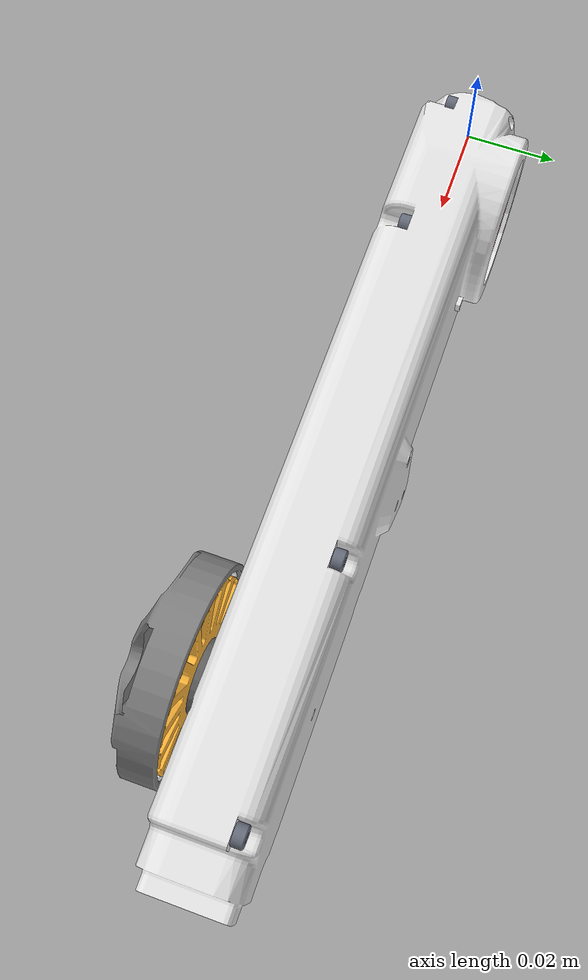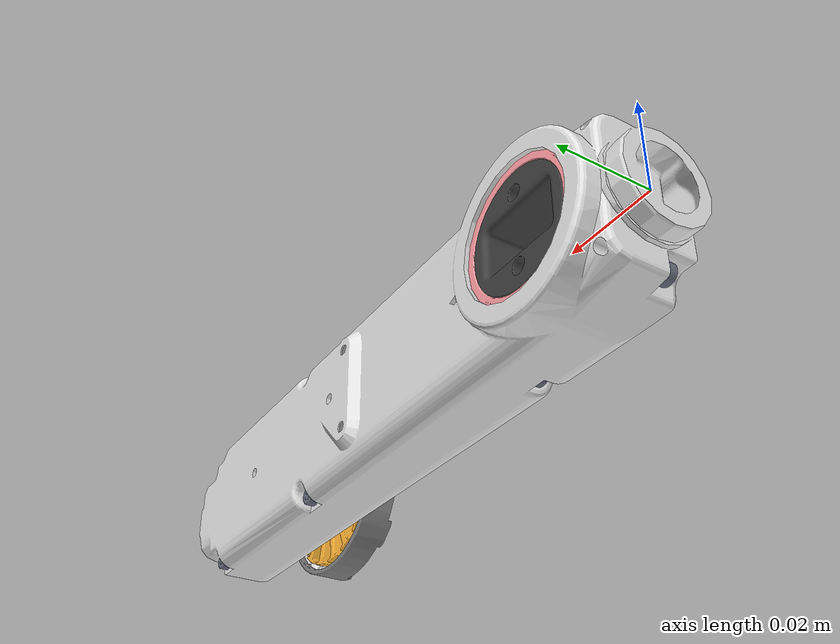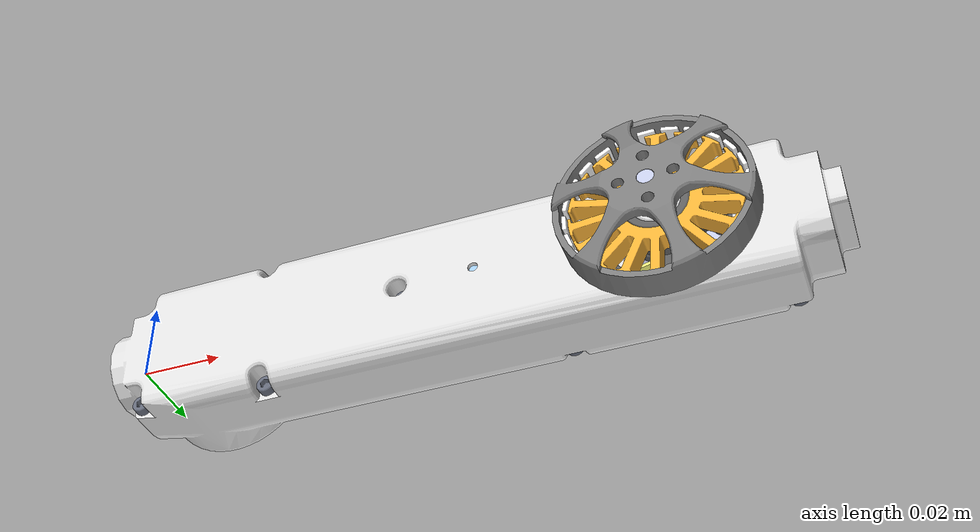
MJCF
<mujoco model="solo12_hip_fe_hl">
  <default>
    <default class="visual">
      <geom group="2" type="mesh" contype="0" conaffinity="0"/>
    </default>
    <default class="collision">
      <geom group="3" type="mesh"/>
    </default>
  </default>
  <asset>
    <material name="material_0" specular="1.0" shininess="0.0" rgba="1.000000 0.501961 0.501961 1.0"/>
    <material name="material_1" specular="1.0" shininess="0.0" rgba="0.654902 0.819608 1.000000 1.0"/>
    <material name="material_2" specular="1.0" shininess="0.0" rgba="0.749020 1.000000 1.000000 1.0"/>
    <material name="material_3" specular="1.0" shininess="0.0" rgba="0.749020 1.000000 0.749020 1.0"/>
    <material name="material_4" specular="1.0" shininess="0.0" rgba="0.592157 0.603922 0.709804 1.0"/>
    <material name="material_5" specular="1.0" shininess="0.0" rgba="0.501961 0.501961 0.501961 1.0"/>
    <material name="material_6" specular="1.0" shininess="0.0" rgba="0.858824 0.858824 0.858824 1.0"/>
    <material name="material_7" specular="1.0" shininess="0.0" rgba="0.376471 0.376471 0.376471 1.0"/>
    <material name="material_8" specular="1.0" shininess="0.0" rgba="1.000000 0.713726 0.219608 1.0"/>
    <material name="material_9" specular="1.0" shininess="0.0" rgba="0.949020 0.949020 0.949020 1.0"/>
    <material name="material_10" specular="1.0" shininess="0.0" rgba="0.792157 0.819608 0.929412 1.0"/>
    <material name="material_11" specular="1.0" shininess="0.0" rgba="1.000000 1.000000 1.000000 1.0"/>
    <material name="material_12" specular="1.0" shininess="0.0" rgba="0.894118 0.894118 0.894118 1.0"/>
    <material name="material_13" specular="1.0" shininess="0.0" rgba="1.000000 1.000000 0.000000 1.0"/>
    <material name="material_14" specular="1.0" shininess="0.0" rgba="0.956863 1.000000 0.403922 1.0"/>
    <material name="material_15" specular="1.0" shininess="0.0" rgba="1.000000 1.000000 0.501961 1.0"/>
    <material name="material_16" specular="1.0" shininess="0.0" rgba="0.403922 0.427451 0.486275 1.0"/>
    <material name="material_17" specular="1.0" shininess="0.0" rgba="0.992157 1.000000 0.494118 1.0"/>
    <material name="material_18" specular="1.0" shininess="0.0" rgba="0.247059 0.247059 0.247059 1.0"/>
    <material name="material_19" specular="1.0" shininess="0.0" rgba="1.000000 0.619608 0.639216 1.0"/>
    <mesh file="solo12_hip_fe_hl_0.obj"/>
    <mesh file="solo12_hip_fe_hl_1.obj"/>
    <mesh file="solo12_hip_fe_hl_2.obj"/>
    <mesh file="solo12_hip_fe_hl_3.obj"/>
    <mesh file="solo12_hip_fe_hl_4.obj"/>
    <mesh file="solo12_hip_fe_hl_5.obj"/>
    <mesh file="solo12_hip_fe_hl_6.obj"/>
    <mesh file="solo12_hip_fe_hl_7.obj"/>
    <mesh file="solo12_hip_fe_hl_8.obj"/>
    <mesh file="solo12_hip_fe_hl_9.obj"/>
    <mesh file="solo12_hip_fe_hl_10.obj"/>
    <mesh file="solo12_hip_fe_hl_11.obj"/>
    <mesh file="solo12_hip_fe_hl_12.obj"/>
    <mesh file="solo12_hip_fe_hl_13.obj"/>
    <mesh file="solo12_hip_fe_hl_14.obj"/>
    <mesh file="solo12_hip_fe_hl_15.obj"/>
    <mesh file="solo12_hip_fe_hl_16.obj"/>
    <mesh file="solo12_hip_fe_hl_17.obj"/>
    <mesh file="solo12_hip_fe_hl_18.obj"/>
    <mesh file="solo12_hip_fe_hl_19.obj"/>
  </asset>
  <worldbody>
    <body name="solo12_hip_fe_hl">
      <geom mesh="solo12_hip_fe_hl_0" material="material_19" class="visual"/>
      <geom mesh="solo12_hip_fe_hl_1" material="material_18" class="visual"/>
      <geom mesh="solo12_hip_fe_hl_2" material="material_17" class="visual"/>
      <geom mesh="solo12_hip_fe_hl_3" material="material_16" class="visual"/>
      <geom mesh="solo12_hip_fe_hl_4" material="material_15" class="visual"/>
      <geom mesh="solo12_hip_fe_hl_5" material="material_14" class="visual"/>
      <geom mesh="solo12_hip_fe_hl_6" material="material_13" class="visual"/>
      <geom mesh="solo12_hip_fe_hl_7" material="material_12" class="visual"/>
      <geom mesh="solo12_hip_fe_hl_8" material="material_11" class="visual"/>
      <geom mesh="solo12_hip_fe_hl_9" material="material_10" class="visual"/>
      <geom mesh="solo12_hip_fe_hl_10" material="material_9" class="visual"/>
      <geom mesh="solo12_hip_fe_hl_11" material="material_8" class="visual"/>
      <geom mesh="solo12_hip_fe_hl_12" material="material_7" class="visual"/>
      <geom mesh="solo12_hip_fe_hl_13" material="material_6" class="visual"/>
      <geom mesh="solo12_hip_fe_hl_14" material="material_5" class="visual"/>
      <geom mesh="solo12_hip_fe_hl_15" material="material_4" class="visual"/>
      <geom mesh="solo12_hip_fe_hl_16" material="material_3" class="visual"/>
      <geom mesh="solo12_hip_fe_hl_17" material="material_2" class="visual"/>
      <geom mesh="solo12_hip_fe_hl_18" material="material_1" class="visual"/>
      <geom mesh="solo12_hip_fe_hl_19" material="material_0" class="visual"/>
      <geom mesh="solo12_hip_fe_hl_0" class="collision"/>
      <geom mesh="solo12_hip_fe_hl_1" class="collision"/>
      <geom mesh="solo12_hip_fe_hl_2" class="collision"/>
      <geom mesh="solo12_hip_fe_hl_3" class="collision"/>
      <geom mesh="solo12_hip_fe_hl_4" class="collision"/>
      <geom mesh="solo12_hip_fe_hl_5" class="collision"/>
      <geom mesh="solo12_hip_fe_hl_6" class="collision"/>
      <geom mesh="solo12_hip_fe_hl_7" class="collision"/>
      <geom mesh="solo12_hip_fe_hl_8" class="collision"/>
      <geom mesh="solo12_hip_fe_hl_9" class="collision"/>
      <geom mesh="solo12_hip_fe_hl_10" class="collision"/>
      <geom mesh="solo12_hip_fe_hl_11" class="collision"/>
      <geom mesh="solo12_hip_fe_hl_12" class="collision"/>
      <geom mesh="solo12_hip_fe_hl_13" class="collision"/>
      <geom mesh="solo12_hip_fe_hl_14" class="collision"/>
      <geom mesh="solo12_hip_fe_hl_15" class="collision"/>
      <geom mesh="solo12_hip_fe_hl_16" class="collision"/>
      <geom mesh="solo12_hip_fe_hl_17" class="collision"/>
      <geom mesh="solo12_hip_fe_hl_18" class="collision"/>
      <geom mesh="solo12_hip_fe_hl_19" class="collision"/>
    </body>
  </worldbody>
</mujoco>
